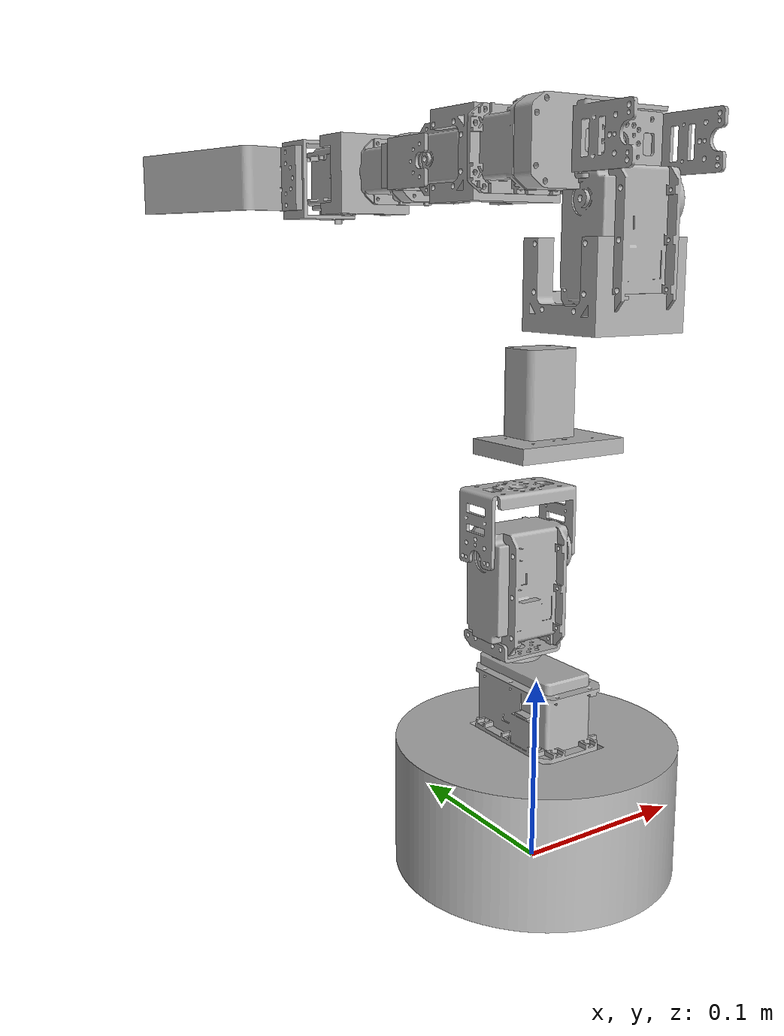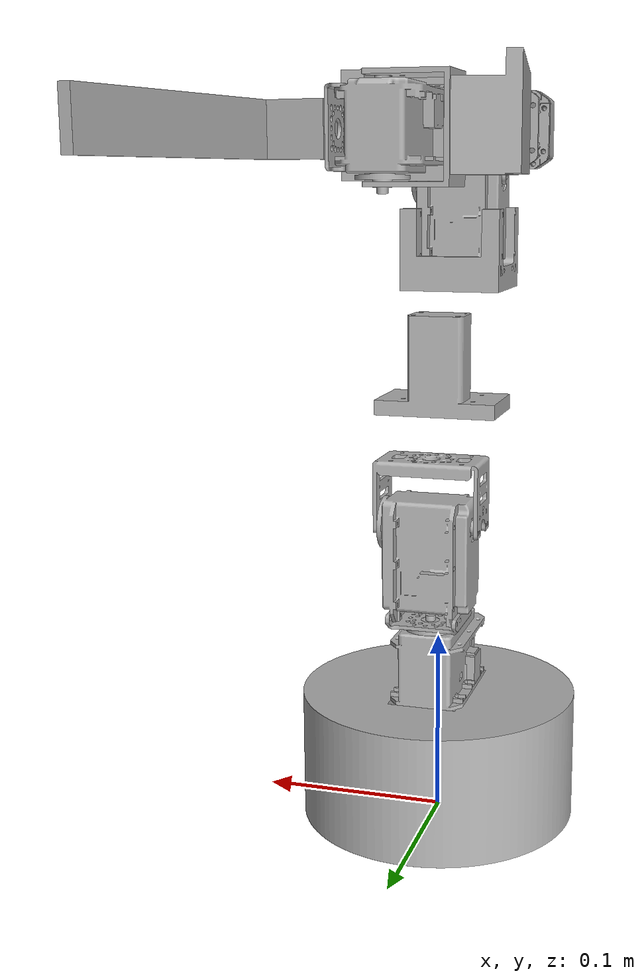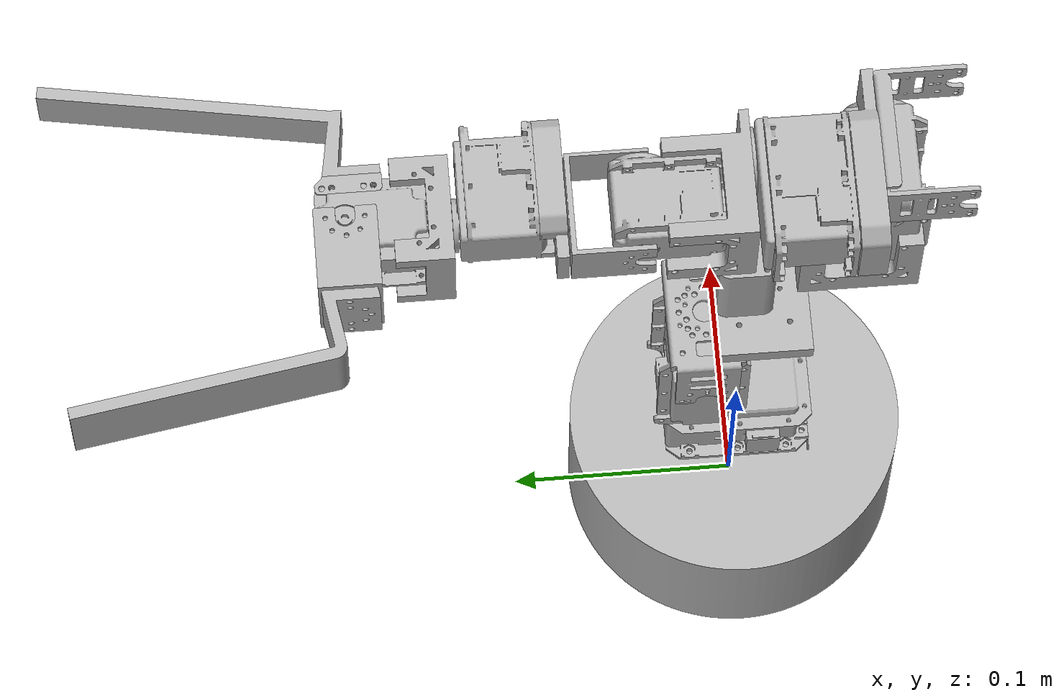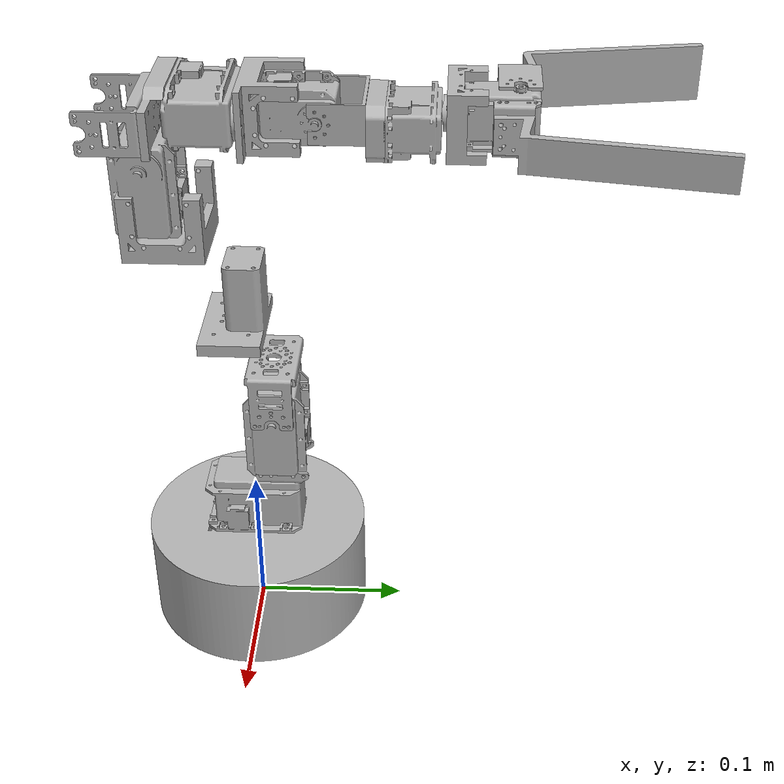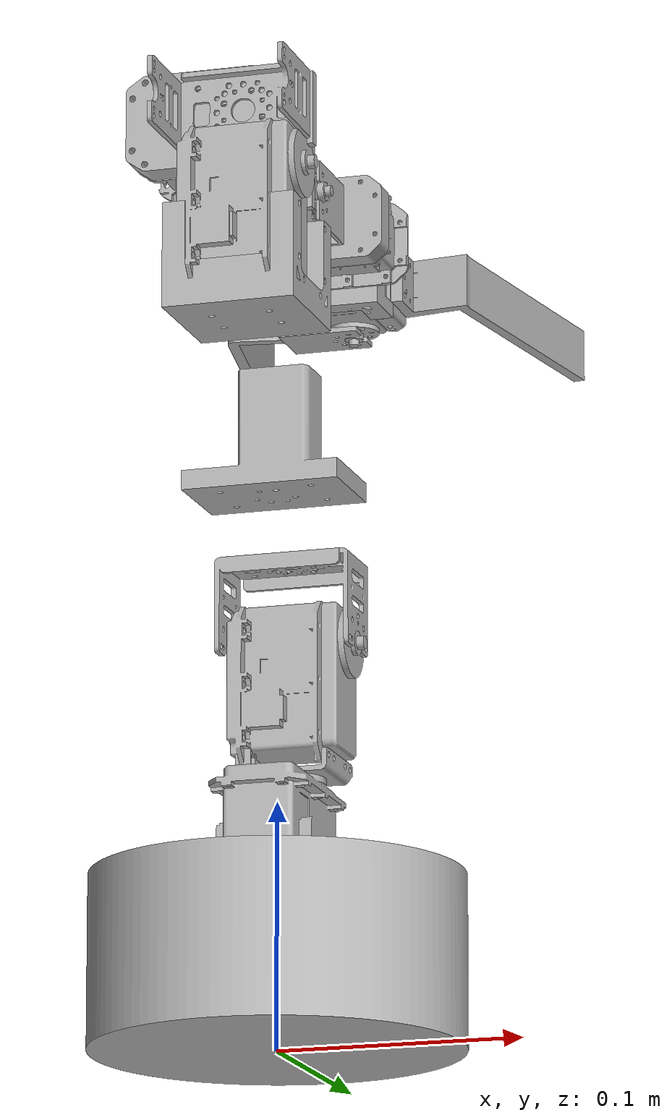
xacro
<?xml version="1.0" ?>
<robot name="success" xmlns:xacro="http://www.ros.org/wiki/xacro">

<xacro:include filename="$(find robotarm1)/urdf/materials.xacro" />

<link name="world"/>
<link name="base_link">

  <visual>
    <origin xyz="0 0 0" rpy="0 0 0"/>
    <geometry>
      <mesh filename="file://$(find robotarm1)/meshes/base_link.stl" scale="0.001 0.001 0.001"/>
    </geometry>
    <material name="silver"/>
  </visual>
  <collision>
    <origin xyz="0 0 0" rpy="0 0 0"/>
    <geometry>
      <mesh filename="file://$(find robotarm1)/meshes/base_link.stl" scale="0.001 0.001 0.001"/>
    </geometry>
  </collision>
</link>

<link name="motor_1_1">
  <inertial>
    <origin xyz="3.628829346516639e-06 0.002321966228830479 0.01746041392822499" rpy="0 0 0"/>
    <mass value="0.6789927169229144"/>
    <inertia ixx="0.000325" iyy="0.000181" izz="0.000257" ixy="-0.0" iyz="-8e-06" ixz="0.0"/>
  </inertial>
  <visual>
    <origin xyz="-0.0 -0.0 -0.07" rpy="0 0 0"/>
    <geometry>
      <mesh filename="file://$(find robotarm1)/meshes/motor_1_1.stl" scale="0.001 0.001 0.001"/>
    </geometry>
    <material name="silver"/>
  </visual>
  <collision>
    <origin xyz="-0.0 -0.0 -0.07" rpy="0 0 0"/>
    <geometry>
      <mesh filename="file://$(find robotarm1)/meshes/motor_1_1.stl" scale="0.001 0.001 0.001"/>
    </geometry>
  </collision>
</link>

<link name="link_1_1">
  <inertial>
    <origin xyz="3.116517286715824e-14 0.0011404315085001282 0.0026024287473348923" rpy="0 0 0"/>
    <mass value="0.02126433295845854"/>
    <inertia ixx="2e-06" iyy="4e-06" izz="6e-06" ixy="0.0" iyz="-0.0" ixz="0.0"/>
  </inertial>
  <visual>
    <origin xyz="-0.0 -0.01805 -0.113" rpy="0 0 0"/>
    <geometry>
      <mesh filename="file://$(find robotarm1)/meshes/link_1_1.stl" scale="0.001 0.001 0.001"/>
    </geometry>
    <material name="silver"/>
  </visual>
  <collision>
    <origin xyz="-0.0 -0.01805 -0.113" rpy="0 0 0"/>
    <geometry>
      <mesh filename="file://$(find robotarm1)/meshes/link_1_1.stl" scale="0.001 0.001 0.001"/>
    </geometry>
  </collision>
</link>

<link name="motor_2_1">
  <inertial>
    <origin xyz="-0.016539586071775015 0.011003628829346513 0.03207196622883057" rpy="0 0 0"/>
    <mass value="0.6789927169229144"/>
    <inertia ixx="0.000257" iyy="0.000325" izz="0.000181" ixy="0.0" iyz="-0.0" ixz="-8e-06"/>
  </inertial>
  <visual>
    <origin xyz="-0.017 -0.00705 -0.1197" rpy="0 0 0"/>
    <geometry>
      <mesh filename="file://$(find robotarm1)/meshes/motor_2_1.stl" scale="0.001 0.001 0.001"/>
    </geometry>
    <material name="silver"/>
  </visual>
  <collision>
    <origin xyz="-0.017 -0.00705 -0.1197" rpy="0 0 0"/>
    <geometry>
      <mesh filename="file://$(find robotarm1)/meshes/motor_2_1.stl" scale="0.001 0.001 0.001"/>
    </geometry>
  </collision>
</link>

<link name="link_2_1">
  <inertial>
    <origin xyz="-0.027999999999980655 0.019804685074076584 0.01686096319842667" rpy="0 0 0"/>
    <mass value="0.05448373289857463"/>
    <inertia ixx="1.3e-05" iyy="3.2e-05" izz="3.2e-05" ixy="-0.0" iyz="-1e-06" ixz="-0.0"/>
  </inertial>
  <visual>
    <origin xyz="-0.0278 -0.01805 -0.1675" rpy="0 0 0"/>
    <geometry>
      <mesh filename="file://$(find robotarm1)/meshes/link_2_1.stl" scale="0.001 0.001 0.001"/>
    </geometry>
    <material name="silver"/>
  </visual>
  <collision>
    <origin xyz="-0.0278 -0.01805 -0.1675" rpy="0 0 0"/>
    <geometry>
      <mesh filename="file://$(find robotarm1)/meshes/link_2_1.stl" scale="0.001 0.001 0.001"/>
    </geometry>
  </collision>
</link>

<link name="link_3_1">
  <inertial>
    <origin xyz="-0.019002468210588864 0.011265489623913744 0.017659662426253858" rpy="0 0 0"/>
    <mass value="0.0552102238099497"/>
    <inertia ixx="2e-05" iyy="1.7e-05" izz="2.4e-05" ixy="-0.0" iyz="-4e-06" ixz="-0.0"/>
  </inertial>
  <visual>
    <origin xyz="-0.0188 -0.052592 -0.182461" rpy="0 0 0"/>
    <geometry>
      <mesh filename="file://$(find robotarm1)/meshes/link_3_1.stl" scale="0.001 0.001 0.001"/>
    </geometry>
    <material name="silver"/>
  </visual>
  <collision>
    <origin xyz="-0.0188 -0.052592 -0.182461" rpy="0 0 0"/>
    <geometry>
      <mesh filename="file://$(find robotarm1)/meshes/link_3_1.stl" scale="0.001 0.001 0.001"/>
    </geometry>
  </collision>
</link>

<link name="link_4_1">
  <inertial>
    <origin xyz="-0.0120000000968575 0.014596944381057228 0.0019209753631552196" rpy="0 0 0"/>
    <mass value="0.04342078162492755"/>
    <inertia ixx="1.9e-05" iyy="2.5e-05" izz="2.4e-05" ixy="-0.0" iyz="4e-06" ixz="0.0"/>
  </inertial>
  <visual>
    <origin xyz="-0.0118 -0.085817 -0.225194" rpy="0 0 0"/>
    <geometry>
      <mesh filename="file://$(find robotarm1)/meshes/link_4_1.stl" scale="0.001 0.001 0.001"/>
    </geometry>
    <material name="silver"/>
  </visual>
  <collision>
    <origin xyz="-0.0118 -0.085817 -0.225194" rpy="0 0 0"/>
    <geometry>
      <mesh filename="file://$(find robotarm1)/meshes/link_4_1.stl" scale="0.001 0.001 0.001"/>
    </geometry>
  </collision>
</link>

<link name="motor_3_1">
  <inertial>
    <origin xyz="-0.01653958616863254 0.03155325662043752 0.012411879639587703" rpy="0 0 0"/>
    <mass value="0.6789927169229144"/>
    <inertia ixx="0.000257" iyy="0.000241" izz="0.000264" ixy="-6e-06" iyz="-7.1e-05" ixz="-5e-06"/>
  </inertial>
  <visual>
    <origin xyz="-0.01755 -0.092096 -0.23448" rpy="0 0 0"/>
    <geometry>
      <mesh filename="file://$(find robotarm1)/meshes/motor_3_1.stl" scale="0.001 0.001 0.001"/>
    </geometry>
    <material name="silver"/>
  </visual>
  <collision>
    <origin xyz="-0.01755 -0.092096 -0.23448" rpy="0 0 0"/>
    <geometry>
      <mesh filename="file://$(find robotarm1)/meshes/motor_3_1.stl" scale="0.001 0.001 0.001"/>
    </geometry>
  </collision>
</link>

<link name="link_5_1">
  <inertial>
    <origin xyz="-0.02800000009683809 0.026002420832358097 0.0006118155166975892" rpy="0 0 0"/>
    <mass value="0.05448373289857463"/>
    <inertia ixx="1.3e-05" iyy="3.1e-05" izz="3.3e-05" ixy="-0.0" iyz="-0.0" ixz="-0.0"/>
  </inertial>
  <visual>
    <origin xyz="-0.02835 -0.135623 -0.25709" rpy="0 0 0"/>
    <geometry>
      <mesh filename="file://$(find robotarm1)/meshes/link_5_1.stl" scale="0.001 0.001 0.001"/>
    </geometry>
    <material name="silver"/>
  </visual>
  <collision>
    <origin xyz="-0.02835 -0.135623 -0.25709" rpy="0 0 0"/>
    <geometry>
      <mesh filename="file://$(find robotarm1)/meshes/link_5_1.stl" scale="0.001 0.001 0.001"/>
    </geometry>
  </collision>
</link>

<link name="link_6_1">
  <inertial>
    <origin xyz="-0.03447684065920139 0.0036645815558500883 0.01108891988158256" rpy="0 0 0"/>
    <mass value="0.01953980766714853"/>
    <inertia ixx="3e-06" iyy="1.2e-05" izz="9e-06" ixy="0.0" iyz="0.0" ixz="0.0"/>
  </inertial>
  <visual>
    <origin xyz="-0.01935 -0.171871 -0.24694" rpy="0 0 0"/>
    <geometry>
      <mesh filename="file://$(find robotarm1)/meshes/link_6_1.stl" scale="0.001 0.001 0.001"/>
    </geometry>
    <material name="silver"/>
  </visual>
  <collision>
    <origin xyz="-0.01935 -0.171871 -0.24694" rpy="0 0 0"/>
    <geometry>
      <mesh filename="file://$(find robotarm1)/meshes/link_6_1.stl" scale="0.001 0.001 0.001"/>
    </geometry>
  </collision>
</link>

<link name="motor_4_1">
  <inertial>
    <origin xyz="-0.01920343918080634 0.017853818341815875 -0.016884935385133693" rpy="0 0 0"/>
    <mass value="0.5683577063335443"/>
    <inertia ixx="0.000133" iyy="0.000195" izz="0.000234" ixy="-7e-06" iyz="-1e-06" ixz="-0.0"/>
  </inertial>
  <visual>
    <origin xyz="-0.002397 -0.183203 -0.275514" rpy="0 0 0"/>
    <geometry>
      <mesh filename="file://$(find robotarm1)/meshes/motor_4_1.stl" scale="0.001 0.001 0.001"/>
    </geometry>
    <material name="silver"/>
  </visual>
  <collision>
    <origin xyz="-0.002397 -0.183203 -0.275514" rpy="0 0 0"/>
    <geometry>
      <mesh filename="file://$(find robotarm1)/meshes/motor_4_1.stl" scale="0.001 0.001 0.001"/>
    </geometry>
  </collision>
</link>

<link name="link_7_1">
  <inertial>
    <origin xyz="3.833091163267868e-08 0.009300994007382518 0.016462825532284286" rpy="0 0 0"/>
    <mass value="0.022873425755281396"/>
    <inertia ixx="9e-06" iyy="1.2e-05" izz="8e-06" ixy="0.0" iyz="-0.0" ixz="0.0"/>
  </inertial>
  <visual>
    <origin xyz="0.001603 -0.224098 -0.259171" rpy="0 0 0"/>
    <geometry>
      <mesh filename="file://$(find robotarm1)/meshes/link_7_1.stl" scale="0.001 0.001 0.001"/>
    </geometry>
    <material name="silver"/>
  </visual>
  <collision>
    <origin xyz="0.001603 -0.224098 -0.259171" rpy="0 0 0"/>
    <geometry>
      <mesh filename="file://$(find robotarm1)/meshes/link_7_1.stl" scale="0.001 0.001 0.001"/>
    </geometry>
  </collision>
</link>

<link name="motor_5_1">
  <inertial>
    <origin xyz="0.00847786512548423 0.02430701491069548 0.01554528626890489" rpy="0 0 0"/>
    <mass value="0.349956896326235"/>
    <inertia ixx="0.000101" iyy="6.3e-05" izz="8.3e-05" ixy="-0.0" iyz="2e-06" ixz="-0.0"/>
  </inertial>
  <visual>
    <origin xyz="0.010103 -0.234234 -0.26191" rpy="0 0 0"/>
    <geometry>
      <mesh filename="file://$(find robotarm1)/meshes/motor_5_1.stl" scale="0.001 0.001 0.001"/>
    </geometry>
    <material name="silver"/>
  </visual>
  <collision>
    <origin xyz="0.010103 -0.234234 -0.26191" rpy="0 0 0"/>
    <geometry>
      <mesh filename="file://$(find robotarm1)/meshes/motor_5_1.stl" scale="0.001 0.001 0.001"/>
    </geometry>
  </collision>
</link>

<link name="link_8_1">
  <inertial>
    <origin xyz="3.825698971873272e-08 0.01989765925476633 0.022765394103367642" rpy="0 0 0"/>
    <mass value="0.005409120330097442"/>
    <inertia ixx="2e-06" iyy="2e-06" izz="1e-06" ixy="0.0" iyz="0.0" ixz="0.0"/>
  </inertial>
  <visual>
    <origin xyz="0.001603 -0.270153 -0.257253" rpy="0 0 0"/>
    <geometry>
      <mesh filename="file://$(find robotarm1)/meshes/link_8_1.stl" scale="0.001 0.001 0.001"/>
    </geometry>
    <material name="silver"/>
  </visual>
  <collision>
    <origin xyz="0.001603 -0.270153 -0.257253" rpy="0 0 0"/>
    <geometry>
      <mesh filename="file://$(find robotarm1)/meshes/link_8_1.stl" scale="0.001 0.001 0.001"/>
    </geometry>
  </collision>
</link>

<link name="link_9_1">
  <inertial>
    <origin xyz="3.8531361511596335e-08 0.004789230011400136 -0.02710068765011786" rpy="0 0 0"/>
    <mass value="0.014111619441575405"/>
    <inertia ixx="4e-06" iyy="6e-06" izz="2e-06" ixy="0.0" iyz="0.0" ixz="-0.0"/>
  </inertial>
  <visual>
    <origin xyz="0.001603 -0.299299 -0.293948" rpy="0 0 0"/>
    <geometry>
      <mesh filename="file://$(find robotarm1)/meshes/link_9_1.stl" scale="0.001 0.001 0.001"/>
    </geometry>
    <material name="silver"/>
  </visual>
  <collision>
    <origin xyz="0.001603 -0.299299 -0.293948" rpy="0 0 0"/>
    <geometry>
      <mesh filename="file://$(find robotarm1)/meshes/link_9_1.stl" scale="0.001 0.001 0.001"/>
    </geometry>
  </collision>
</link>

<link name="motor_6_1">
  <inertial>
    <origin xyz="0.014977865319199292 0.014994153121127118 0.0017184942198582576" rpy="0 0 0"/>
    <mass value="0.349956896326235"/>
    <inertia ixx="0.000101" iyy="8.3e-05" izz="6.3e-05" ixy="0.0" iyz="-2e-06" ixz="-0.0"/>
  </inertial>
  <visual>
    <origin xyz="0.016603 -0.311242 -0.266722" rpy="0 0 0"/>
    <geometry>
      <mesh filename="file://$(find robotarm1)/meshes/motor_6_1.stl" scale="0.001 0.001 0.001"/>
    </geometry>
    <material name="silver"/>
  </visual>
  <collision>
    <origin xyz="0.016603 -0.311242 -0.266722" rpy="0 0 0"/>
    <geometry>
      <mesh filename="file://$(find robotarm1)/meshes/motor_6_1.stl" scale="0.001 0.001 0.001"/>
    </geometry>
  </collision>
</link>

<link name="link_10_1">
  <inertial>
    <origin xyz="1.8881984123759804e-05 0.007113439253758902 0.00016750020448380587" rpy="0 0 0"/>
    <mass value="0.016517367966711924"/>
    <inertia ixx="5e-06" iyy="8e-06" izz="5e-06" ixy="-0.0" iyz="0.0" ixz="-0.0"/>
  </inertial>
  <visual>
    <origin xyz="0.001603 -0.346438 -0.280053" rpy="0 0 0"/>
    <geometry>
      <mesh filename="file://$(find robotarm1)/meshes/link_10_1.stl" scale="0.001 0.001 0.001"/>
    </geometry>
    <material name="silver"/>
  </visual>
  <collision>
    <origin xyz="0.001603 -0.346438 -0.280053" rpy="0 0 0"/>
    <geometry>
      <mesh filename="file://$(find robotarm1)/meshes/link_10_1.stl" scale="0.001 0.001 0.001"/>
    </geometry>
  </collision>
</link>

<link name="gripper_1_1">
  <inertial>
    <origin xyz="-0.008894334070789444 0.02431239600315649 0.015327024950343271" rpy="0 0 0"/>
    <mass value="0.349956896326235"/>
    <inertia ixx="0.000101" iyy="6.3e-05" izz="8.3e-05" ixy="-0.0" iyz="2e-06" ixz="0.0"/>
  </inertial>
  <visual>
    <origin xyz="-0.007285 -0.354495 -0.264856" rpy="0 0 0"/>
    <geometry>
      <mesh filename="file://$(find robotarm1)/meshes/gripper_1_1.stl" scale="0.001 0.001 0.001"/>
    </geometry>
    <material name="silver"/>
  </visual>
  <collision>
    <origin xyz="-0.007285 -0.354495 -0.264856" rpy="0 0 0"/>
    <geometry>
      <mesh filename="file://$(find robotarm1)/meshes/gripper_1_1.stl" scale="0.001 0.001 0.001"/>
    </geometry>
  </collision>
</link>

<link name="link_11_1">
  <inertial>
    <origin xyz="-0.020339619497389386 -0.0004578460326667977 0.019490934800781956" rpy="0 0 0"/>
    <mass value="0.005783955125023724"/>
    <inertia ixx="2e-06" iyy="2e-06" izz="1e-06" ixy="-0.0" iyz="0.0" ixz="0.0"/>
  </inertial>
  <visual>
    <origin xyz="0.001074 -0.390419 -0.259988" rpy="0 0 0"/>
    <geometry>
      <mesh filename="file://$(find robotarm1)/meshes/link_11_1.stl" scale="0.001 0.001 0.001"/>
    </geometry>
    <material name="silver"/>
  </visual>
  <collision>
    <origin xyz="0.001074 -0.390419 -0.259988" rpy="0 0 0"/>
    <geometry>
      <mesh filename="file://$(find robotarm1)/meshes/link_11_1.stl" scale="0.001 0.001 0.001"/>
    </geometry>
  </collision>
</link>

<link name="link_12_1">
  <inertial>
    <origin xyz="0.003408667393922985 0.008609960353675616 0.015297169275065692" rpy="0 0 0"/>
    <mass value="0.011446844551351427"/>
    <inertia ixx="2e-06" iyy="2e-06" izz="1e-06" ixy="0.0" iyz="0.0" ixz="0.0"/>
  </inertial>
  <visual>
    <origin xyz="-0.013783 -0.377785 -0.265566" rpy="0 0 0"/>
    <geometry>
      <mesh filename="file://$(find robotarm1)/meshes/link_12_1.stl" scale="0.001 0.001 0.001"/>
    </geometry>
    <material name="silver"/>
  </visual>
  <collision>
    <origin xyz="-0.013783 -0.377785 -0.265566" rpy="0 0 0"/>
    <geometry>
      <mesh filename="file://$(find robotarm1)/meshes/link_12_1.stl" scale="0.001 0.001 0.001"/>
    </geometry>
  </collision>
</link>

<link name="finger_1_1">
  <inertial>
    <origin xyz="0.02968986982337453 0.04830119665267402 0.0018797520204901774" rpy="0 0 0"/>
    <mass value="0.02058349518896819"/>
    <inertia ixx="3.5e-05" iyy="5e-06" izz="3.8e-05" ixy="-1e-05" iyz="-1e-06" ixz="-0.0"/>
  </inertial>
  <visual>
    <origin xyz="-0.019405 -0.385926 -0.280908" rpy="0 0 0"/>
    <geometry>
      <mesh filename="file://$(find robotarm1)/meshes/finger_1_1.stl" scale="0.001 0.001 0.001"/>
    </geometry>
    <material name="silver"/>
  </visual>
  <collision>
    <origin xyz="-0.019405 -0.385926 -0.280908" rpy="0 0 0"/>
    <geometry>
      <mesh filename="file://$(find robotarm1)/meshes/finger_1_1.stl" scale="0.001 0.001 0.001"/>
    </geometry>
  </collision>
</link>

<link name="finger_2_1">
  <inertial>
    <origin xyz="-0.028798813853003112 0.04420830332161485 0.00031718297311517096" rpy="0 0 0"/>
    <mass value="0.0296291055226969"/>
    <inertia ixx="4.5e-05" iyy="9e-06" izz="4.7e-05" ixy="1.3e-05" iyz="-1e-06" ixz="0.0"/>
  </inertial>
  <visual>
    <origin xyz="0.031566 -0.389967 -0.279225" rpy="0 0 0"/>
    <geometry>
      <mesh filename="file://$(find robotarm1)/meshes/finger_2_1.stl" scale="0.001 0.001 0.001"/>
    </geometry>
    <material name="silver"/>
  </visual>
  <collision>
    <origin xyz="0.031566 -0.389967 -0.279225" rpy="0 0 0"/>
    <geometry>
      <mesh filename="file://$(find robotarm1)/meshes/finger_2_1.stl" scale="0.001 0.001 0.001"/>
    </geometry>
  </collision>
</link>

<link name="ft_frame"/>
<link name="tool0"/>

<joint name="world_to_base" type="fixed">
  <parent link="world"/>
  <child link="base_link"/>
  <!-- Optionally set the origin for placement -->
  <origin xyz="0 0 0" rpy="0 0 0"/>
  <axis xyz="0 0 1"/>
</joint>

<joint name="Rigid 1" type="fixed">
  <origin xyz="0.0 0.0 0.07" rpy="0 0 0"/>
  <parent link="base_link"/>
  <child link="motor_1_1"/>
</joint>

<joint name="Revolute_2" type="revolute">
  <origin xyz="0.0 0.01805 0.043" rpy="0 0 0"/>
  <parent link="motor_1_1"/>
  <child link="link_1_1"/>
  <axis xyz="0.0 0.0 -1.0"/>
  <limit upper="1.658063" lower="-1.570796" effort="100" velocity="100"/>
</joint>

<joint name="Rigid 3" type="fixed">
  <origin xyz="0.017 -0.011 0.0067" rpy="0 0 0"/>
  <parent link="link_1_1"/>
  <child link="motor_2_1"/>
</joint>

<joint name="Revolute_4" type="revolute">
  <origin xyz="0.0108 0.011 0.0478" rpy="0 0 0"/>
  <parent link="motor_2_1"/>
  <child link="link_2_1"/>
  <axis xyz="-1.0 -0.0 0.0"/>
  <limit upper="1.570796" lower="-1.570796" effort="100" velocity="100"/>
</joint>

<joint name="Rigid 5" type="fixed">
  <origin xyz="-0.009 0.011 0.036" rpy="0 0 0"/>
  <parent link="link_2_1"/>
  <child link="link_3_1"/>
</joint>

<joint name="Rigid 6" type="fixed">
  <origin xyz="-0.007 -0.011 0.053" rpy="0 0 0"/>
  <parent link="link_3_1"/>
  <child link="link_4_1"/>
</joint>

<joint name="Rigid 7" type="fixed">
  <origin xyz="0.00575 -0.003 0.0108" rpy="0 0 0"/>
  <parent link="link_4_1"/>
  <child link="motor_3_1"/>
</joint>

<joint name="Revolute_8" type="revolute">
  <origin xyz="0.0108 0.011 0.0478" rpy="0 0 0"/>
  <parent link="motor_3_1"/>
  <child link="link_5_1"/>
  <axis xyz="-1.0 -0.0 0.0"/>
  <limit upper="1.570796" lower="-1.570796" effort="100" velocity="100"/>
</joint>

<joint name="Rigid 9" type="fixed">
  <origin xyz="-0.009 0.036 -0.011" rpy="0 0 0"/>
  <parent link="link_5_1"/>
  <child link="link_6_1"/>
</joint>

<joint name="Rigid 10" type="fixed">
  <origin xyz="-0.016953 0.012 0.0283" rpy="0 0 0"/>
  <parent link="link_6_1"/>
  <child link="motor_4_1"/>
</joint>

<joint name="Revolute_11" type="revolute">
  <origin xyz="-0.004 0.0405 -0.0173" rpy="0 0 0"/>
  <parent link="motor_4_1"/>
  <child link="link_7_1"/>
  <axis xyz="0.0 -1.0 0.0"/>
  <limit upper="1.570796" lower="-1.570796" effort="100" velocity="100"/>
</joint>

<joint name="Rigid 12" type="fixed">
  <origin xyz="-0.0085 0.010197 0.0025" rpy="0 0 0"/>
  <parent link="link_7_1"/>
  <child link="motor_5_1"/>
</joint>

<joint name="Revolute_13" type="revolute">
  <origin xyz="0.0085 0.0358 -0.0055" rpy="0 0 0"/>
  <parent link="motor_5_1"/>
  <child link="link_8_1"/>
  <axis xyz="-0.0 0.0 1.0"/>
  <limit upper="1.570796" lower="-1.570796" effort="100" velocity="100"/>
</joint>

<joint name="Rigid 14" type="fixed">
  <origin xyz="0.0 0.03 0.036" rpy="0 0 0"/>
  <parent link="link_8_1"/>
  <child link="link_9_1"/>
</joint>

<joint name="Rigid 15" type="fixed">
  <origin xyz="-0.015 0.0113 -0.0275" rpy="0 0 0"/>
  <parent link="link_9_1"/>
  <child link="motor_6_1"/>
</joint>

<joint name="Revolute_16" type="revolute">
  <origin xyz="0.015 0.0355 0.0125" rpy="0 0 0"/>
  <parent link="motor_6_1"/>
  <child link="link_10_1"/>
  <axis xyz="0.0 -1.0 0.0"/>
  <limit upper="1.570796" lower="-1.570796" effort="100" velocity="100"/>
</joint>

<joint name="Rigid 17" type="fixed">
  <origin xyz="0.0085 0.007698 -0.0156" rpy="0 0 0"/>
  <parent link="link_10_1"/>
  <child link="gripper_1_1"/>
</joint>

<joint name="Revolute_18" type="revolute">
  <origin xyz="-0.0085 0.0358 -0.0055" rpy="0 0 0"/>
  <parent link="gripper_1_1"/>
  <child link="link_11_1"/>
  <axis xyz="-0.0 0.0 1.0"/>
  <limit upper="0.0" lower="-0.872665" effort="100" velocity="100"/>
</joint>

<joint name="Rigid 19" type="fixed">
  <origin xyz="0.0065 0.0233 0.0" rpy="0 0 0"/>
  <parent link="gripper_1_1"/>
  <child link="link_12_1"/>
</joint>

<joint name="Rigid 20" type="fixed">
  <origin xyz="0.006 0.0085 0.015" rpy="0 0 0"/>
  <parent link="link_12_1"/>
  <child link="finger_1_1"/>
</joint>

<joint name="Rigid 21" type="fixed">
  <origin xyz="-0.03 0.0 0.02" rpy="0 0 0"/>
  <parent link="link_11_1"/>
  <child link="finger_2_1"/>
</joint>

<joint name="joint-ft_frame" type="fixed">
    <parent link="gripper_1_1"/>
    <child link="ft_frame"/>
    <origin xyz="0 0 0" rpy="0 0 0"/>
  </joint>

<joint name="joint-tool" type="fixed">
    <parent link="ft_frame"/>
    <child link="tool0"/>
    <origin xyz="-0.0085 0.0358 -0.0055" rpy="0 0 0"/>
</joint>

<ros2_control name="GazeboSystem" type="system">
  <hardware>
    <plugin>gazebo_ros2_control/GazeboSystem</plugin>
  </hardware>
  <joint name="Revolute_2">
    <command_interface name="position">
        <param name="min">-1.570796</param>
        <param name="max"> 1.570796</param>
    </command_interface>
    <state_interface name="position">
        <param name="initial_value">0.0</param>
    </state_interface>
    <state_interface name="velocity"/>
    <state_interface name="effort"/>
  </joint>

  <joint name="Revolute_4">
    <command_interface name="position">
        <param name="min">-1.570796</param>
        <param name="max"> 1.570796</param>
    </command_interface>
    <state_interface name="position">
        <param name="initial_value">0.0</param>
    </state_interface>
    <state_interface name="velocity"/>
    <state_interface name="effort"/>
  </joint>

  <joint name="Revolute_8">
    <command_interface name="position">
        <param name="min">-1.570796</param>
        <param name="max"> 1.570796</param>
    </command_interface>
    <state_interface name="position">
        <param name="initial_value">0.0</param>
    </state_interface>
    <state_interface name="velocity"/>
    <state_interface name="effort"/>
  </joint>

  <joint name="Revolute_11">
    <command_interface name="position">
        <param name="min">-1.570796</param>
        <param name="max"> 1.570796</param>
    </command_interface>
    <state_interface name="position">
        <param name="initial_value">0.0</param>
    </state_interface>
    <state_interface name="velocity"/>
    <state_interface name="effort"/>
  </joint>

  <joint name="Revolute_13">
    <command_interface name="position">
        <param name="min">-1.570796</param>
        <param name="max"> 1.570796</param>
    </command_interface>
    <state_interface name="position">
        <param name="initial_value">0.0</param>
    </state_interface>
    <state_interface name="velocity"/>
    <state_interface name="effort"/>
  </joint>

  <joint name="Revolute_16">
    <command_interface name="position">
        <param name="min">-1.570796</param>
        <param name="max"> 1.570796</param>
    </command_interface>
    <state_interface name="position">
        <param name="initial_value">0.0</param>
    </state_interface>
    <state_interface name="velocity"/>
    <state_interface name="effort"/>
  </joint>

  <joint name="Revolute_18">
    <command_interface name="position">
        <param name="min">-0.872665</param>
        <param name="max"> 0</param>
    </command_interface>

    <command_interface name="effort">
        <param name="max"> 5.0</param>
    </command_interface>
    <state_interface name="position">
        <param name="initial_value">0.0</param>
    </state_interface>
    <state_interface name="velocity"/>
    <state_interface name="effort"/>
  </joint>

</ros2_control>

<gazebo>
  <plugin filename="libgazebo_ros2_control.so" name="gazebo_ros2_control">
    <parameters>$(find robotarm1)/config/ros2_controllers.yaml</parameters>
  </plugin>
</gazebo>

</robot>

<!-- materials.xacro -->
<robot name="success" xmlns:xacro="http://www.ros.org/wiki/xacro" >

<material name="silver">
  <color rgba="0.700 0.700 0.700 1.000"/>
</material>

<material name="red">
  <color rgba="1.000 0.000 0.000 1.000"/>
</material>

</robot>
